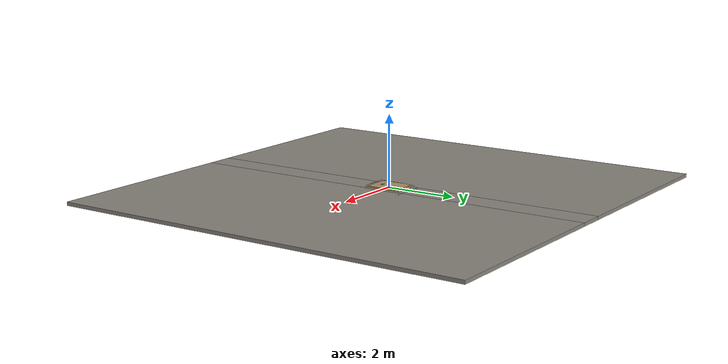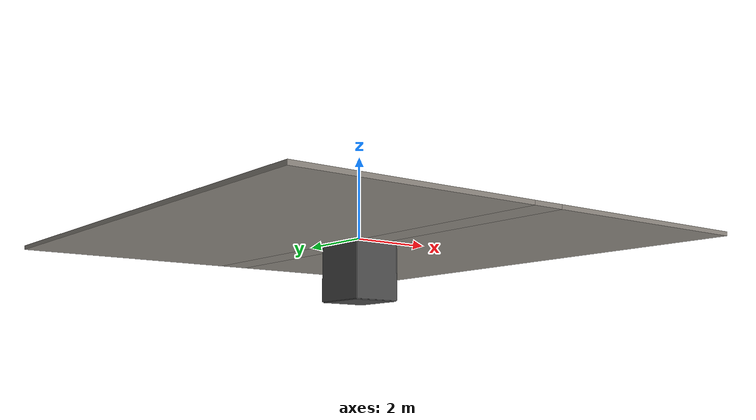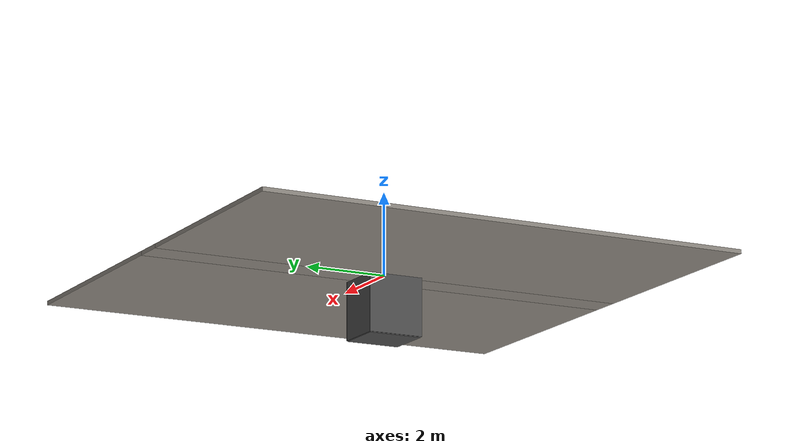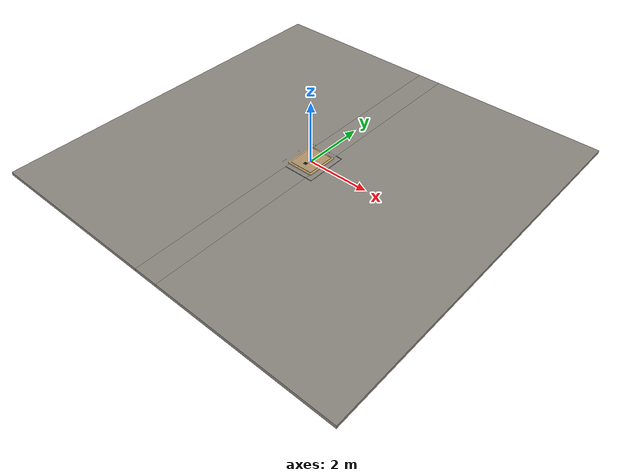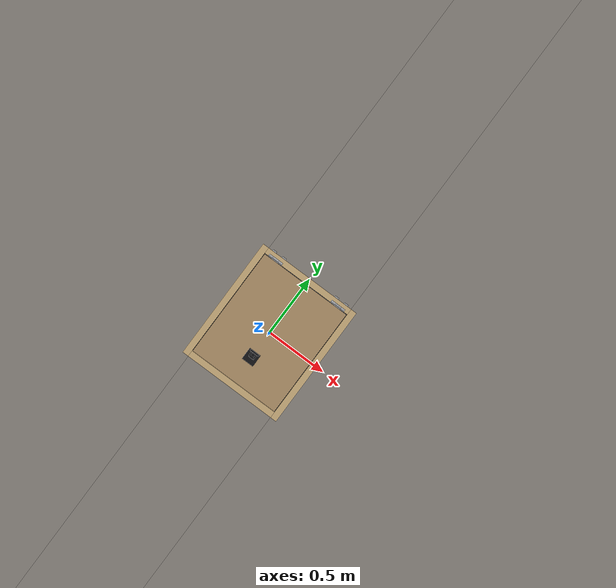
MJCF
<?xml version="1.0" ?>
<mujoco model="db0449_hatch_floor_full">
  <compiler angle="radian" meshdir="../../hardware" texturedir="../../textures" autolimits="true" inertiafromgeom="false"/>
  <option timestep="0.002" integrator="implicitfast" cone="elliptic" impratio="10" noslip_iterations="3">
    <flag multiccd="enable"/>
  </option>
  <size memory="16M"/>
  <default>
    <geom condim="4" solref="0.005 1" solimp="0.95 0.99 0.001"/>
    <joint solreflimit="0.005 1" solimplimit="0.95 0.99 0.001"/>
    <tendon solreflimit="0.005 1"/>
    <equality solref="0.002 1"/>
  </default>
  <visual>
    <headlight ambient="0.4 0.4 0.4" diffuse="0.7 0.7 0.7" specular="0.2 0.2 0.2"/>
    <quality shadowsize="4096"/>
    <map znear="0.01" zfar="60"/>
  </visual>
  <asset>
    <material name="mat_floor" rgba="0.55 0.53 0.5 1" specular="0.2" shininess="0.15" reflectance="0"/>
    <material name="mat_wall" rgba="0.78 0.76 0.7 1" specular="0.2" shininess="0.1" reflectance="0"/>
    <material name="mat_pit" rgba="0.3 0.3 0.3 1" specular="0.2" shininess="0.1" reflectance="0"/>
    <material name="mat_frame" rgba="0.82 0.7 0.5 1" specular="0.2" shininess="0.45" reflectance="0"/>
    <material name="mat_leaf" rgba="0.7 0.58 0.42 1" specular="0.2" shininess="0.5" reflectance="0"/>
    <material name="mat_hinge" rgba="0.65 0.66 0.68 1" specular="0.74" shininess="0.5" reflectance="0.36"/>
    <material name="mat_op_wrought_iron" rgba="0.08 0.08 0.09 1" specular="0.56" shininess="0.25" reflectance="0.24"/>
    <texture name="skybox" type="skybox" builtin="gradient" rgb1="0.6 0.7 0.85" rgb2="0.9 0.92 0.95" width="256" height="256"/>
  </asset>
  <worldbody>
    <light name="sun" pos="1.5 -2.5 4" dir="-0.3 0.5 -0.8" directional="true" diffuse="0.8 0.8 0.8" specular="0.3 0.3 0.3" castshadow="true"/>
    <light name="fill" pos="-1.5 2.5 3" dir="0.3 -0.5 -0.7" directional="true" diffuse="0.35 0.35 0.4" castshadow="false"/>
    <camera name="robot_view" pos="0 -1.875 0.98" xyaxes="1 0 0 0 0.26963 0.962964" fovy="52"/>
    <camera name="far_view" pos="0 1.875 0.98" xyaxes="-1 0 0 0 -0.26963 0.962964" fovy="52"/>
    <camera name="iso" pos="1.425 -1.575 1.28" xyaxes="0.741536 0.670913 0 -0.242917 0.268487 0.932151" fovy="46"/>
    <camera name="detail_handle" pos="0.35 -0.7375 0.912" xyaxes="0.843661 0.536875 0 -0.426006 0.669439 0.608581" fovy="38"/>
    <geom name="floor_a" type="box" size="2.8075 6 0.05" pos="-3.1925 0 -0.05" material="mat_floor" group="0" contype="1" conaffinity="1" friction="0.6 0.005 0.0001" density="2400"/>
    <geom name="floor_b" type="box" size="2.8075 6 0.05" pos="3.1925 0 -0.05" material="mat_floor" group="0" contype="1" conaffinity="1" friction="0.6 0.005 0.0001" density="2400"/>
    <geom name="floor_c" type="box" size="0.385 2.7725 0.05" pos="0 -3.2275 -0.05" material="mat_floor" group="0" contype="1" conaffinity="1" friction="0.6 0.005 0.0001" density="2400"/>
    <geom name="floor_d" type="box" size="0.385 2.7725 0.05" pos="0 3.2275 -0.05" material="mat_floor" group="0" contype="1" conaffinity="1" friction="0.6 0.005 0.0001" density="2400"/>
    <geom name="pit_floor" type="box" size="0.585 0.655 0.02" pos="0 0 -1.5" material="mat_pit" group="0" contype="1" conaffinity="1" friction="0.6 0.005 0.0001" density="2400"/>
    <geom name="pit_wall_l" type="box" size="0.01 0.675 0.75" pos="-0.595 0 -0.75" material="mat_pit" group="0" contype="1" conaffinity="1" friction="0.6 0.005 0.0001" density="2400"/>
    <geom name="pit_wall_r" type="box" size="0.01 0.675 0.75" pos="0.595 0 -0.75" material="mat_pit" group="0" contype="1" conaffinity="1" friction="0.6 0.005 0.0001" density="2400"/>
    <geom name="pit_wall_n" type="box" size="0.585 0.01 0.75" pos="0 -0.665 -0.75" material="mat_pit" group="0" contype="1" conaffinity="1" friction="0.6 0.005 0.0001" density="2400"/>
    <geom name="pit_wall_f" type="box" size="0.585 0.01 0.75" pos="0 0.665 -0.75" material="mat_pit" group="0" contype="1" conaffinity="1" friction="0.6 0.005 0.0001" density="2400"/>
    <geom name="curb_l" type="box" size="0.025 0.505 0.02" pos="-0.41 0 0.02" material="mat_frame" group="0" contype="1" conaffinity="1" friction="0.6 0.005 0.0001" density="7850"/>
    <geom name="curb_r" type="box" size="0.025 0.505 0.02" pos="0.41 0 0.02" material="mat_frame" group="0" contype="1" conaffinity="1" friction="0.6 0.005 0.0001" density="7850"/>
    <geom name="curb_n" type="box" size="0.385 0.025 0.02" pos="0 -0.48 0.02" material="mat_frame" group="0" contype="1" conaffinity="1" friction="0.6 0.005 0.0001" density="7850"/>
    <geom name="curb_f" type="box" size="0.385 0.025 0.02" pos="0 0.48 0.02" material="mat_frame" group="0" contype="1" conaffinity="1" friction="0.6 0.005 0.0001" density="7850"/>
    <geom name="hatch_hinge_0_curb_n" type="cylinder" size="0.01 0.018" pos="-0.334 0.465 0.04" quat="0.707107 0 0.707107 0" material="mat_hinge" group="1" contype="0" conaffinity="0" density="7850"/>
    <geom name="hatch_hinge_0_curb_strap_n" type="box" size="0.018 0.032 0.005" pos="-0.334 0.485 0.03" material="mat_hinge" group="1" contype="0" conaffinity="0" density="7850"/>
    <geom name="hatch_hinge_0_curb_p" type="cylinder" size="0.01 0.018" pos="-0.246 0.465 0.04" quat="0.707107 0 0.707107 0" material="mat_hinge" group="1" contype="0" conaffinity="0" density="7850"/>
    <geom name="hatch_hinge_0_curb_strap_p" type="box" size="0.018 0.032 0.005" pos="-0.246 0.485 0.03" material="mat_hinge" group="1" contype="0" conaffinity="0" density="7850"/>
    <geom name="hatch_hinge_1_curb_n" type="cylinder" size="0.01 0.018" pos="0.246 0.465 0.04" quat="0.707107 0 0.707107 0" material="mat_hinge" group="1" contype="0" conaffinity="0" density="7850"/>
    <geom name="hatch_hinge_1_curb_strap_n" type="box" size="0.018 0.032 0.005" pos="0.246 0.485 0.03" material="mat_hinge" group="1" contype="0" conaffinity="0" density="7850"/>
    <geom name="hatch_hinge_1_curb_p" type="cylinder" size="0.01 0.018" pos="0.334 0.465 0.04" quat="0.707107 0 0.707107 0" material="mat_hinge" group="1" contype="0" conaffinity="0" density="7850"/>
    <geom name="hatch_hinge_1_curb_strap_p" type="box" size="0.018 0.032 0.005" pos="0.334 0.485 0.03" material="mat_hinge" group="1" contype="0" conaffinity="0" density="7850"/>
    <site name="approach_point" pos="0 -1.5 0" quat="1 0 0 0" size="0.05" rgba="0.2 0.9 0.2 0.5" group="4"/>
    <site name="goal_point" pos="0 0 -1" quat="1 0 0 0" size="0.05" rgba="0.2 0.9 0.2 0.5" group="4"/>
    <site name="door_plane_center" pos="0 0 0" quat="1 0 0 0" size="0.02" rgba="0.2 0.9 0.2 0.5" group="4"/>
    <body name="hatch" pos="0 0.455 0.04">
      <inertial pos="0 -0.443201 0.000226" mass="17.7935" quat="0.707107 -0.00003 -0.00003 -0.707107" diaginertia="0.86986741 1.279285844 2.146115739"/>
      <joint name="hatch_hinge" type="hinge" axis="-1 0 0" pos="0 0.01 0" limited="true" range="0 1.919862" damping="0.554227" frictionloss="3.277526" armature="0.02"/>
      <geom name="hatch_slab" type="box" size="0.38 0.451 0.016" pos="0 -0.455 0" material="mat_leaf" group="0" contype="1" conaffinity="1" friction="0.6 0.005 0.0001" density="1"/>
      <geom name="hatch_hinge_0" type="cylinder" size="0.01 0.028" pos="-0.29 0.01 0" quat="0.707107 0 0.707107 0" material="mat_hinge" group="1" contype="0" conaffinity="0" density="7850"/>
      <geom name="hatch_hinge_0_strap" type="box" size="0.028 0.023 0.003" pos="-0.29 -0.007 0.005" material="mat_hinge" group="1" contype="0" conaffinity="0" density="7850"/>
      <geom name="hatch_hinge_1" type="cylinder" size="0.01 0.028" pos="0.29 0.01 0" quat="0.707107 0 0.707107 0" material="mat_hinge" group="1" contype="0" conaffinity="0" density="7850"/>
      <geom name="hatch_hinge_1_strap" type="box" size="0.028 0.023 0.003" pos="0.29 -0.007 0.005" material="mat_hinge" group="1" contype="0" conaffinity="0" density="7850"/>
      <geom name="ring_recess" type="box" size="0.05 0.05 0.001" pos="0 -0.6825 0.017" material="mat_op_wrought_iron" group="1" contype="0" conaffinity="0" density="7800"/>
      <body name="ring" pos="0 -0.6825 0.016">
        <inertial pos="0 0.019982 0.002997" mass="0.2225" quat="-0.058307 0.998299 0 0" diaginertia="0.000076951 0.000083485 0.000154999"/>
        <joint name="ring_hinge" type="hinge" axis="1 0 0" limited="true" range="0 1.392122" damping="0.003476" armature="0.0001"/>
        <geom name="ring_geom" type="capsule" size="0.006 0.035" pos="0 0.04 0.006" quat="0.707107 0 0.707107 0" material="mat_op_wrought_iron" group="0" contype="1" conaffinity="1" friction="0.6 0.005 0.0001" density="7800"/>
        <geom name="ring_knuckle" type="cylinder" size="0.008 0.022" pos="0 0 0" quat="0.707107 0 0.707107 0" material="mat_op_wrought_iron" group="1" contype="0" conaffinity="0" density="7800"/>
        <geom name="ring_arm_n" type="capsule" size="0.006 0.02" pos="-0.02 0.02 0.003" quat="0.707107 -0.707107 0 0" material="mat_op_wrought_iron" group="1" contype="0" conaffinity="0" density="7800"/>
        <geom name="ring_arm_p" type="capsule" size="0.006 0.02" pos="0.02 0.02 0.003" quat="0.707107 -0.707107 0 0" material="mat_op_wrought_iron" group="1" contype="0" conaffinity="0" density="7800"/>
        <site name="grip_ring" pos="0 0.04 0.006" quat="1 0 0 0" size="0.01" rgba="0.2 0.9 0.2 0.5" group="4"/>
      </body>
    </body>
  </worldbody>
  <sensor>
    <jointpos name="hatch_hinge_pos" joint="hatch_hinge"/>
    <jointvel name="hatch_hinge_vel" joint="hatch_hinge"/>
    <jointpos name="ring_hinge_pos" joint="ring_hinge"/>
    <jointvel name="ring_hinge_vel" joint="ring_hinge"/>
  </sensor>
</mujoco>
